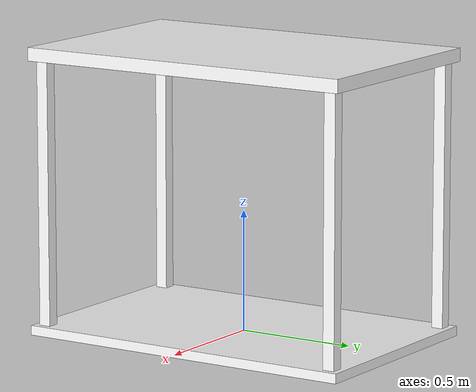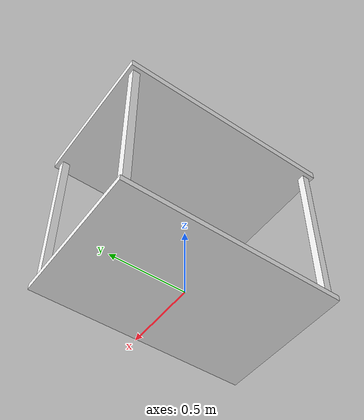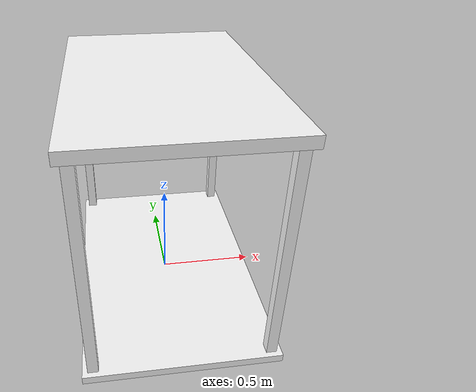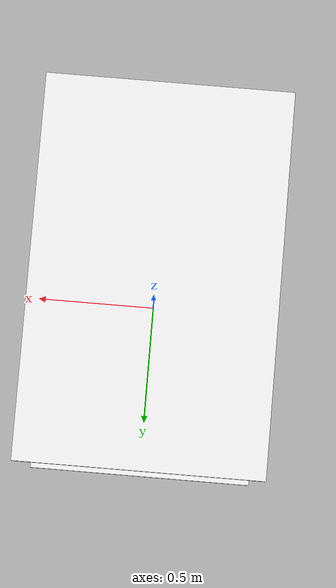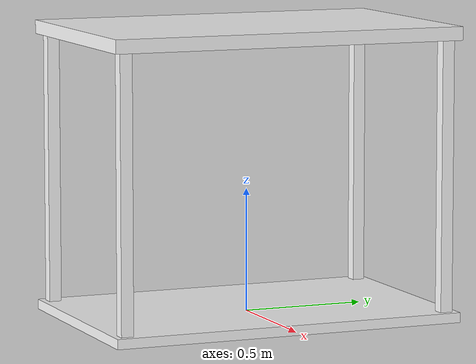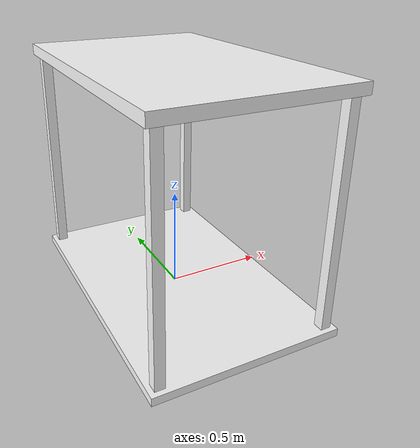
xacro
<?xml version="1.0"?>
<robot name="table" xmlns:xacro="http://ros.org/wiki/xacro">

<!--Bottom table-->
  <link name="frame_base_link">
    <visual>
      <origin rpy="0 0 0" xyz="0 0 0"/>
      <geometry>
        <box size="0.94 1.46 0.04"/>
      </geometry>
      <material name="white">
        <color rgba="1 1 1 1"/>
      </material>
    </visual>
    <collision>
      <origin rpy="0 0 0" xyz="0 0 0"/>
      <geometry>
        <box size="0.94 1.46 0.04"/>
      </geometry>
    </collision>
  </link>

<!--Legs-->

  <link name="leg_1">
    <visual>
      <origin rpy="0 0 0" xyz="0 0 0"/>
      <geometry>
        <box size="0.05 0.05 1.1"/>
      </geometry>
      <material name="white">
        <color rgba="1 1 1 1"/>
      </material>
    </visual>
    <collision>
      <origin rpy="0 0 0" xyz="0.42 0 0"/>
      <geometry>
        <box size="0.94 0.05 1.1"/>
      </geometry>
    </collision>
  </link>

  <joint name="joint_1" type="fixed">
    <origin rpy="0 0 0" xyz="-0.42 -0.68 0.57"/>
    <parent link="frame_base_link"/>
    <child link="leg_1"/>
  </joint>

  <link name="leg_2">
    <visual>
      <origin rpy="0 0 0" xyz="0 0 0"/>
      <geometry>
        <box size="0.05 0.05 1.1"/>
      </geometry>
      <material name="white">
        <color rgba="1 1 1 1"/>
      </material>
    </visual>
    <collision>
      <origin rpy="0 0 0" xyz="0 0.68 0"/>
      <geometry>
        <box size="0.05 1.46 1.1"/>
      </geometry>
    </collision>
  </link>

  <joint name="joint_2" type="fixed">
    <origin rpy="0 0 0" xyz="0.42 -0.68 0.57"/>
    <parent link="frame_base_link"/>
    <child link="leg_2"/>
  </joint>

  <link name="leg_3">
    <visual>
      <origin rpy="0 0 0" xyz="0 0 0"/>
      <geometry>
        <box size="0.05 0.05 1.1"/>
      </geometry>
      <material name="white">
        <color rgba="1 1 1 1"/>
      </material>
    </visual>
    <collision>
      <origin rpy="0 0 0" xyz="0 -0.68 0"/>
      <geometry>
        <box size="0.05 1.46 1.1"/>
      </geometry>
    </collision>
  </link>

  <joint name="joint_3" type="fixed">
    <origin rpy="0 0 0" xyz="-0.42 0.68 0.57"/>
    <parent link="frame_base_link"/>
    <child link="leg_3"/>
  </joint>

  <link name="leg_4">
    <visual>
      <origin rpy="0 0 0" xyz="0 0 0"/>
      <geometry>
        <box size="0.05 0.05 1.1"/>
      </geometry>
      <material name="white">
        <color rgba="1 1 1 1"/>
      </material>
    </visual>
    <collision>
      <origin rpy="0 0 0" xyz="-0.42 0 0"/>
      <geometry>
        <box size="0.94 0.05 1.1"/>
      </geometry>
    </collision>
  </link>

  <joint name="joint_4" type="fixed">
    <origin rpy="0 0 0" xyz="0.42 0.68 0.57"/>
    <parent link="frame_base_link"/>
    <child link="leg_4"/>
  </joint>

<!--Table top-->
  <link name="top_link">
    <visual>
      <origin rpy="0 0 0" xyz="0 0 0"/>
      <geometry>
        <box size="0.94 1.46 0.055"/>
      </geometry>
      <material name="white">
        <color rgba="1 1 1 1"/>
      </material>
    </visual>
    <collision>
      <origin rpy="0 0 0" xyz="0 0 0"/>
      <geometry>
        <box size="0.94 1.46 0.055"/>
      </geometry>
    </collision>
  </link>

  <joint name="joint_top" type="fixed">
    <origin rpy="0 0 0" xyz="0.42 -0.68 0.57"/>
    <parent link="leg_3"/>
    <child link="top_link"/>
  </joint>
</robot>
